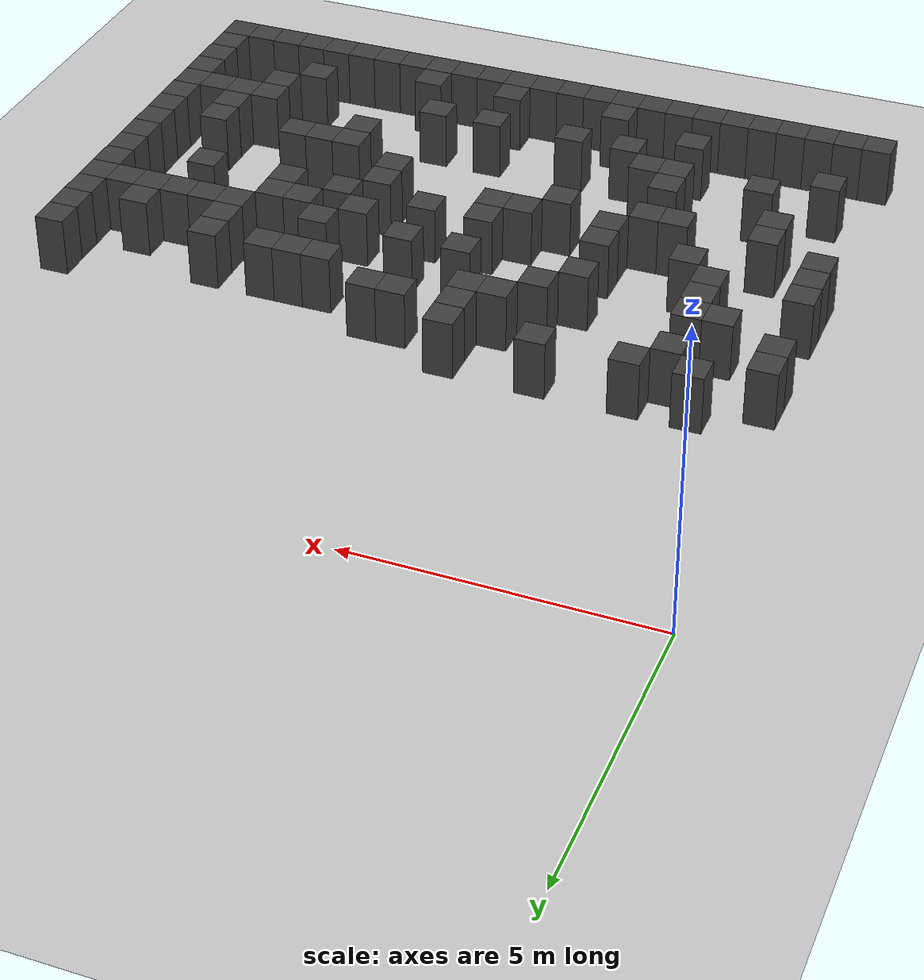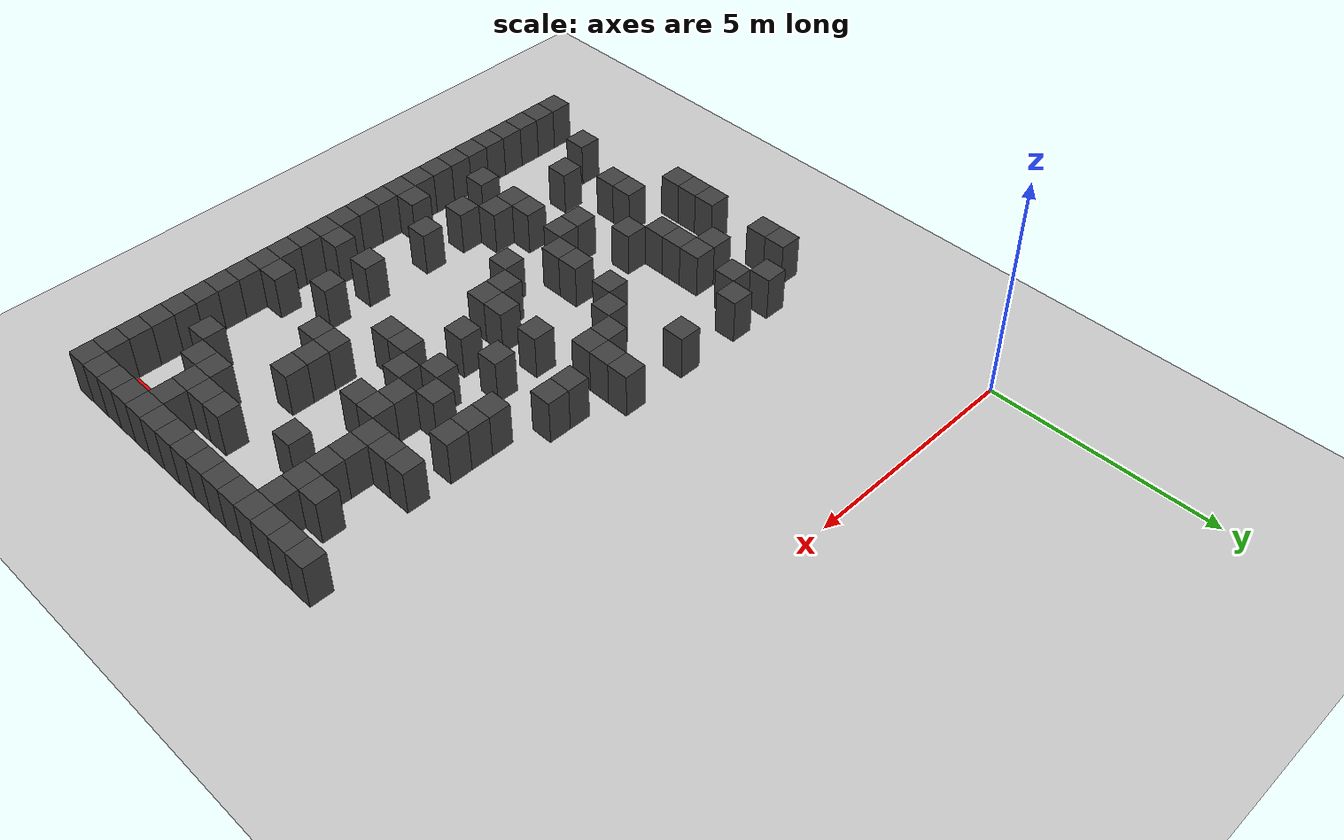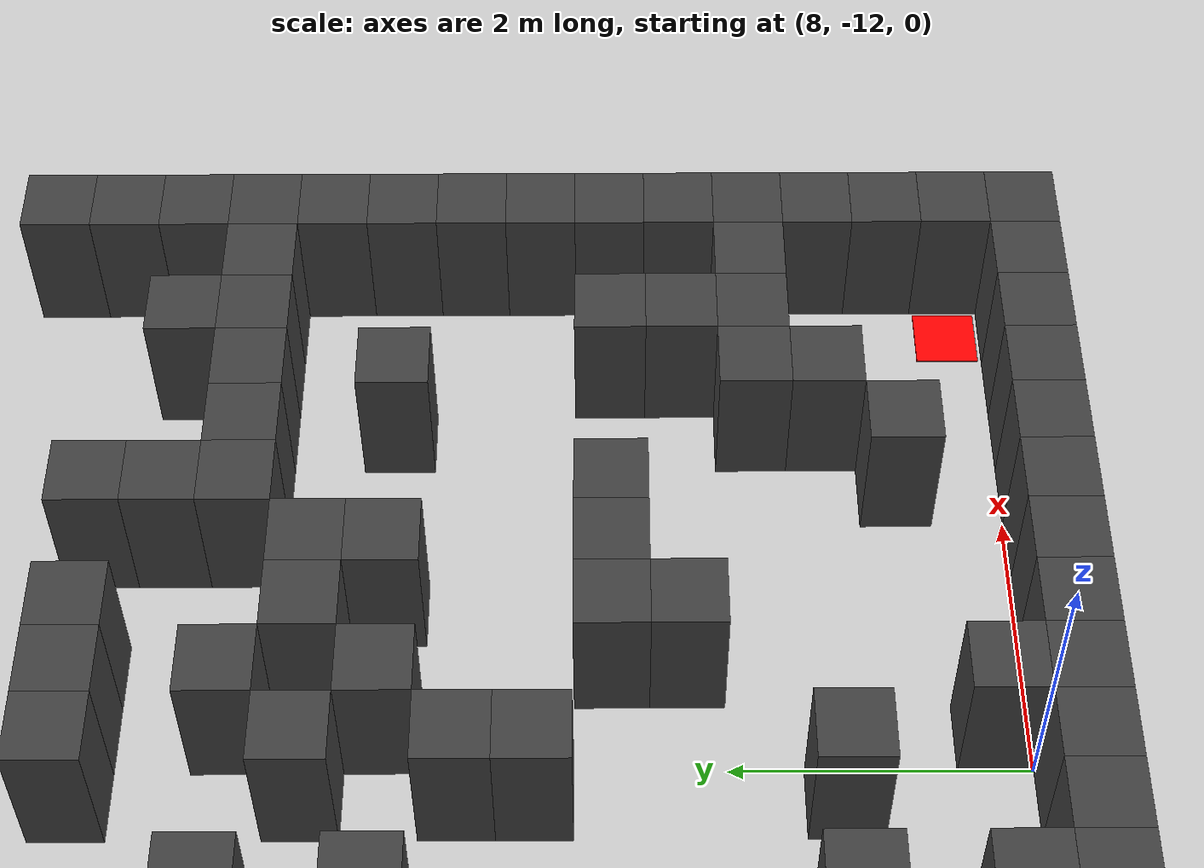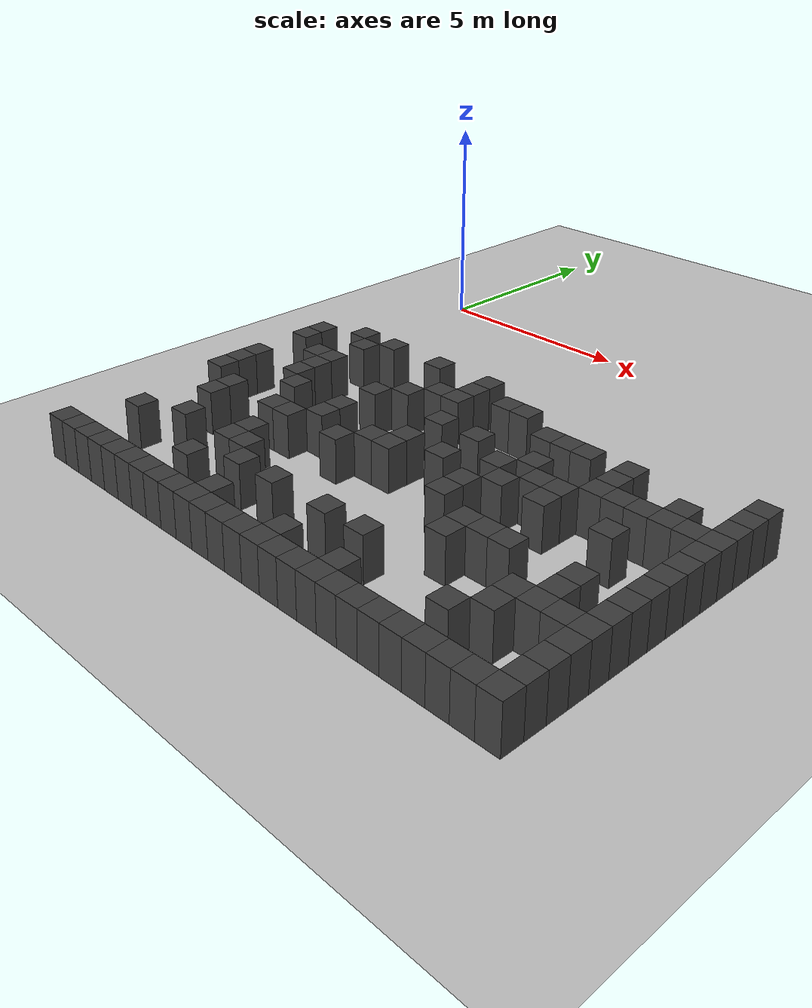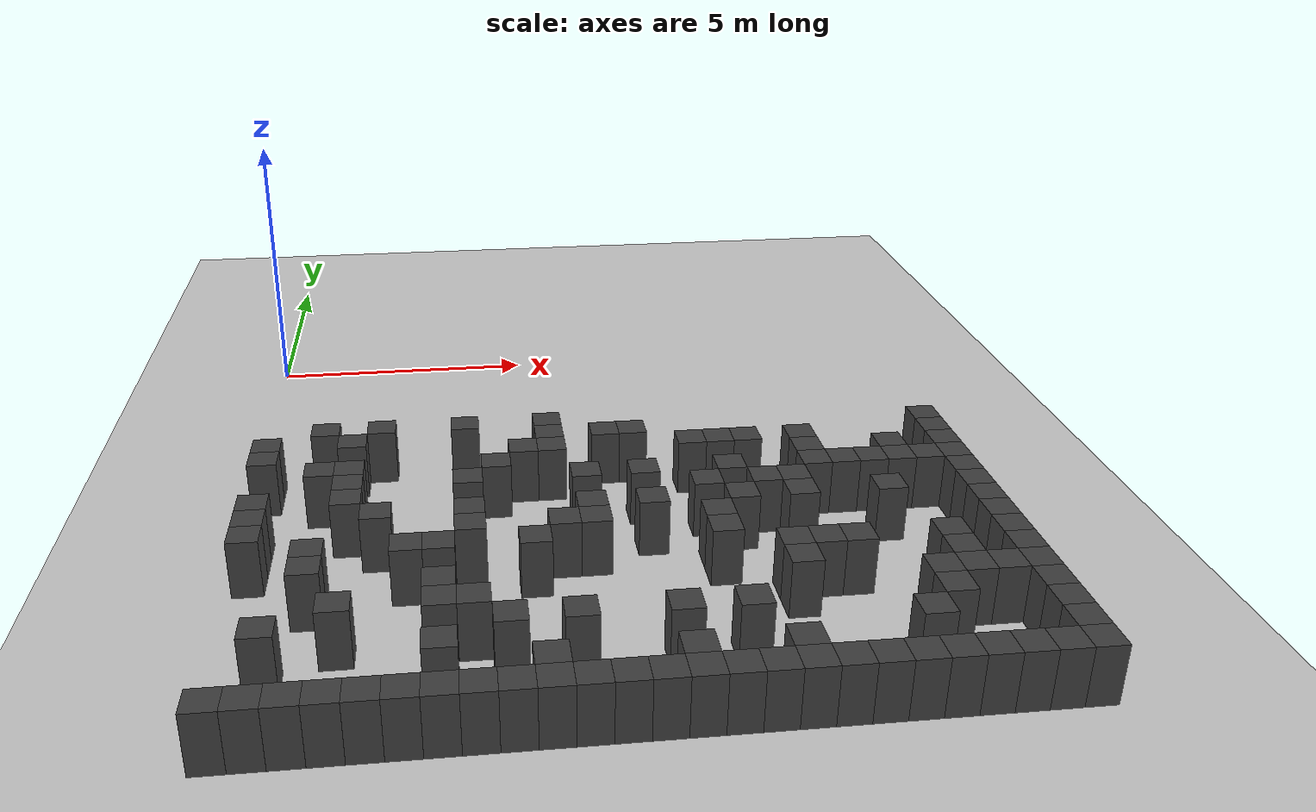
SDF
<sdf version="1.7">
 <world name="map_4682">
  <model name="ground_plane">
   <static>true</static>
   <link name="link">
    <collision name="collision">
     <geometry><plane><normal>0 0 1</normal><size>200 200</size></plane></geometry>
    </collision>
    <visual name="visual">
     <geometry><plane><normal>0 0 1</normal><size>200 200</size></plane></geometry>
     <material><ambient>0.8 0.8 0.8 1</ambient><diffuse>0.8 0.8 0.8 1</diffuse></material>
    </visual>
   </link>
  </model>
  <model name="maze_environment">
   <static>true</static>
   <link name="wall_484">
    <pose>1.250 -4.750 0.500 0 0 0</pose>
    <collision name="col"><geometry><box><size>0.5 0.5 1.0</size></box></geometry></collision>
    <visual name="vis">
     <geometry><box><size>0.5 0.5 1.0</size></box></geometry>
     <material><ambient>0.15 0.15 0.15 1</ambient><diffuse>0.25 0.25 0.25 1</diffuse></material>
    </visual>
   </link>
   <link name="wall_485">
    <pose>2.250 -4.750 0.500 0 0 0</pose>
    <collision name="col"><geometry><box><size>0.5 0.5 1.0</size></box></geometry></collision>
    <visual name="vis">
     <geometry><box><size>0.5 0.5 1.0</size></box></geometry>
     <material><ambient>0.15 0.15 0.15 1</ambient><diffuse>0.25 0.25 0.25 1</diffuse></material>
    </visual>
   </link>
   <link name="wall_486">
    <pose>3.750 -4.750 0.500 0 0 0</pose>
    <collision name="col"><geometry><box><size>0.5 0.5 1.0</size></box></geometry></collision>
    <visual name="vis">
     <geometry><box><size>0.5 0.5 1.0</size></box></geometry>
     <material><ambient>0.15 0.15 0.15 1</ambient><diffuse>0.25 0.25 0.25 1</diffuse></material>
    </visual>
   </link>
   <link name="wall_487">
    <pose>5.250 -4.750 0.500 0 0 0</pose>
    <collision name="col"><geometry><box><size>0.5 0.5 1.0</size></box></geometry></collision>
    <visual name="vis">
     <geometry><box><size>0.5 0.5 1.0</size></box></geometry>
     <material><ambient>0.15 0.15 0.15 1</ambient><diffuse>0.25 0.25 0.25 1</diffuse></material>
    </visual>
   </link>
   <link name="wall_494">
    <pose>0.250 -5.250 0.500 0 0 0</pose>
    <collision name="col"><geometry><box><size>0.5 0.5 1.0</size></box></geometry></collision>
    <visual name="vis">
     <geometry><box><size>0.5 0.5 1.0</size></box></geometry>
     <material><ambient>0.15 0.15 0.15 1</ambient><diffuse>0.25 0.25 0.25 1</diffuse></material>
    </visual>
   </link>
   <link name="wall_495">
    <pose>1.750 -5.250 0.500 0 0 0</pose>
    <collision name="col"><geometry><box><size>0.5 0.5 1.0</size></box></geometry></collision>
    <visual name="vis">
     <geometry><box><size>0.5 0.5 1.0</size></box></geometry>
     <material><ambient>0.15 0.15 0.15 1</ambient><diffuse>0.25 0.25 0.25 1</diffuse></material>
    </visual>
   </link>
   <link name="wall_496">
    <pose>5.250 -5.250 0.500 0 0 0</pose>
    <collision name="col"><geometry><box><size>0.5 0.5 1.0</size></box></geometry></collision>
    <visual name="vis">
     <geometry><box><size>0.5 0.5 1.0</size></box></geometry>
     <material><ambient>0.15 0.15 0.15 1</ambient><diffuse>0.25 0.25 0.25 1</diffuse></material>
    </visual>
   </link>
   <link name="wall_497">
    <pose>6.250 -5.250 0.500 0 0 0</pose>
    <collision name="col"><geometry><box><size>0.5 0.5 1.0</size></box></geometry></collision>
    <visual name="vis">
     <geometry><box><size>0.5 0.5 1.0</size></box></geometry>
     <material><ambient>0.15 0.15 0.15 1</ambient><diffuse>0.25 0.25 0.25 1</diffuse></material>
    </visual>
   </link>
   <link name="wall_498">
    <pose>6.750 -5.250 0.500 0 0 0</pose>
    <collision name="col"><geometry><box><size>0.5 0.5 1.0</size></box></geometry></collision>
    <visual name="vis">
     <geometry><box><size>0.5 0.5 1.0</size></box></geometry>
     <material><ambient>0.15 0.15 0.15 1</ambient><diffuse>0.25 0.25 0.25 1</diffuse></material>
    </visual>
   </link>
   <link name="wall_499">
    <pose>12.250 -5.250 0.500 0 0 0</pose>
    <collision name="col"><geometry><box><size>0.5 0.5 1.0</size></box></geometry></collision>
    <visual name="vis">
     <geometry><box><size>0.5 0.5 1.0</size></box></geometry>
     <material><ambient>0.15 0.15 0.15 1</ambient><diffuse>0.25 0.25 0.25 1</diffuse></material>
    </visual>
   </link>
   <link name="wall_507">
    <pose>0.250 -5.750 0.500 0 0 0</pose>
    <collision name="col"><geometry><box><size>0.5 0.5 1.0</size></box></geometry></collision>
    <visual name="vis">
     <geometry><box><size>0.5 0.5 1.0</size></box></geometry>
     <material><ambient>0.15 0.15 0.15 1</ambient><diffuse>0.25 0.25 0.25 1</diffuse></material>
    </visual>
   </link>
   <link name="wall_508">
    <pose>4.750 -5.750 0.500 0 0 0</pose>
    <collision name="col"><geometry><box><size>0.5 0.5 1.0</size></box></geometry></collision>
    <visual name="vis">
     <geometry><box><size>0.5 0.5 1.0</size></box></geometry>
     <material><ambient>0.15 0.15 0.15 1</ambient><diffuse>0.25 0.25 0.25 1</diffuse></material>
    </visual>
   </link>
   <link name="wall_509">
    <pose>5.250 -5.750 0.500 0 0 0</pose>
    <collision name="col"><geometry><box><size>0.5 0.5 1.0</size></box></geometry></collision>
    <visual name="vis">
     <geometry><box><size>0.5 0.5 1.0</size></box></geometry>
     <material><ambient>0.15 0.15 0.15 1</ambient><diffuse>0.25 0.25 0.25 1</diffuse></material>
    </visual>
   </link>
   <link name="wall_510">
    <pose>7.750 -5.750 0.500 0 0 0</pose>
    <collision name="col"><geometry><box><size>0.5 0.5 1.0</size></box></geometry></collision>
    <visual name="vis">
     <geometry><box><size>0.5 0.5 1.0</size></box></geometry>
     <material><ambient>0.15 0.15 0.15 1</ambient><diffuse>0.25 0.25 0.25 1</diffuse></material>
    </visual>
   </link>
   <link name="wall_511">
    <pose>8.250 -5.750 0.500 0 0 0</pose>
    <collision name="col"><geometry><box><size>0.5 0.5 1.0</size></box></geometry></collision>
    <visual name="vis">
     <geometry><box><size>0.5 0.5 1.0</size></box></geometry>
     <material><ambient>0.15 0.15 0.15 1</ambient><diffuse>0.25 0.25 0.25 1</diffuse></material>
    </visual>
   </link>
   <link name="wall_512">
    <pose>8.750 -5.750 0.500 0 0 0</pose>
    <collision name="col"><geometry><box><size>0.5 0.5 1.0</size></box></geometry></collision>
    <visual name="vis">
     <geometry><box><size>0.5 0.5 1.0</size></box></geometry>
     <material><ambient>0.15 0.15 0.15 1</ambient><diffuse>0.25 0.25 0.25 1</diffuse></material>
    </visual>
   </link>
   <link name="wall_513">
    <pose>9.750 -5.750 0.500 0 0 0</pose>
    <collision name="col"><geometry><box><size>0.5 0.5 1.0</size></box></geometry></collision>
    <visual name="vis">
     <geometry><box><size>0.5 0.5 1.0</size></box></geometry>
     <material><ambient>0.15 0.15 0.15 1</ambient><diffuse>0.25 0.25 0.25 1</diffuse></material>
    </visual>
   </link>
   <link name="wall_514">
    <pose>12.250 -5.750 0.500 0 0 0</pose>
    <collision name="col"><geometry><box><size>0.5 0.5 1.0</size></box></geometry></collision>
    <visual name="vis">
     <geometry><box><size>0.5 0.5 1.0</size></box></geometry>
     <material><ambient>0.15 0.15 0.15 1</ambient><diffuse>0.25 0.25 0.25 1</diffuse></material>
    </visual>
   </link>
   <link name="wall_519">
    <pose>1.250 -6.250 0.500 0 0 0</pose>
    <collision name="col"><geometry><box><size>0.5 0.5 1.0</size></box></geometry></collision>
    <visual name="vis">
     <geometry><box><size>0.5 0.5 1.0</size></box></geometry>
     <material><ambient>0.15 0.15 0.15 1</ambient><diffuse>0.25 0.25 0.25 1</diffuse></material>
    </visual>
   </link>
   <link name="wall_520">
    <pose>1.750 -6.250 0.500 0 0 0</pose>
    <collision name="col"><geometry><box><size>0.5 0.5 1.0</size></box></geometry></collision>
    <visual name="vis">
     <geometry><box><size>0.5 0.5 1.0</size></box></geometry>
     <material><ambient>0.15 0.15 0.15 1</ambient><diffuse>0.25 0.25 0.25 1</diffuse></material>
    </visual>
   </link>
   <link name="wall_521">
    <pose>4.250 -6.250 0.500 0 0 0</pose>
    <collision name="col"><geometry><box><size>0.5 0.5 1.0</size></box></geometry></collision>
    <visual name="vis">
     <geometry><box><size>0.5 0.5 1.0</size></box></geometry>
     <material><ambient>0.15 0.15 0.15 1</ambient><diffuse>0.25 0.25 0.25 1</diffuse></material>
    </visual>
   </link>
   <link name="wall_522">
    <pose>9.750 -6.250 0.500 0 0 0</pose>
    <collision name="col"><geometry><box><size>0.5 0.5 1.0</size></box></geometry></collision>
    <visual name="vis">
     <geometry><box><size>0.5 0.5 1.0</size></box></geometry>
     <material><ambient>0.15 0.15 0.15 1</ambient><diffuse>0.25 0.25 0.25 1</diffuse></material>
    </visual>
   </link>
   <link name="wall_523">
    <pose>11.250 -6.250 0.500 0 0 0</pose>
    <collision name="col"><geometry><box><size>0.5 0.5 1.0</size></box></geometry></collision>
    <visual name="vis">
     <geometry><box><size>0.5 0.5 1.0</size></box></geometry>
     <material><ambient>0.15 0.15 0.15 1</ambient><diffuse>0.25 0.25 0.25 1</diffuse></material>
    </visual>
   </link>
   <link name="wall_524">
    <pose>12.250 -6.250 0.500 0 0 0</pose>
    <collision name="col"><geometry><box><size>0.5 0.5 1.0</size></box></geometry></collision>
    <visual name="vis">
     <geometry><box><size>0.5 0.5 1.0</size></box></geometry>
     <material><ambient>0.15 0.15 0.15 1</ambient><diffuse>0.25 0.25 0.25 1</diffuse></material>
    </visual>
   </link>
   <link name="wall_534">
    <pose>1.750 -6.750 0.500 0 0 0</pose>
    <collision name="col"><geometry><box><size>0.5 0.5 1.0</size></box></geometry></collision>
    <visual name="vis">
     <geometry><box><size>0.5 0.5 1.0</size></box></geometry>
     <material><ambient>0.15 0.15 0.15 1</ambient><diffuse>0.25 0.25 0.25 1</diffuse></material>
    </visual>
   </link>
   <link name="wall_535">
    <pose>3.750 -6.750 0.500 0 0 0</pose>
    <collision name="col"><geometry><box><size>0.5 0.5 1.0</size></box></geometry></collision>
    <visual name="vis">
     <geometry><box><size>0.5 0.5 1.0</size></box></geometry>
     <material><ambient>0.15 0.15 0.15 1</ambient><diffuse>0.25 0.25 0.25 1</diffuse></material>
    </visual>
   </link>
   <link name="wall_536">
    <pose>5.750 -6.750 0.500 0 0 0</pose>
    <collision name="col"><geometry><box><size>0.5 0.5 1.0</size></box></geometry></collision>
    <visual name="vis">
     <geometry><box><size>0.5 0.5 1.0</size></box></geometry>
     <material><ambient>0.15 0.15 0.15 1</ambient><diffuse>0.25 0.25 0.25 1</diffuse></material>
    </visual>
   </link>
   <link name="wall_537">
    <pose>6.750 -6.750 0.500 0 0 0</pose>
    <collision name="col"><geometry><box><size>0.5 0.5 1.0</size></box></geometry></collision>
    <visual name="vis">
     <geometry><box><size>0.5 0.5 1.0</size></box></geometry>
     <material><ambient>0.15 0.15 0.15 1</ambient><diffuse>0.25 0.25 0.25 1</diffuse></material>
    </visual>
   </link>
   <link name="wall_538">
    <pose>8.250 -6.750 0.500 0 0 0</pose>
    <collision name="col"><geometry><box><size>0.5 0.5 1.0</size></box></geometry></collision>
    <visual name="vis">
     <geometry><box><size>0.5 0.5 1.0</size></box></geometry>
     <material><ambient>0.15 0.15 0.15 1</ambient><diffuse>0.25 0.25 0.25 1</diffuse></material>
    </visual>
   </link>
   <link name="wall_539">
    <pose>9.750 -6.750 0.500 0 0 0</pose>
    <collision name="col"><geometry><box><size>0.5 0.5 1.0</size></box></geometry></collision>
    <visual name="vis">
     <geometry><box><size>0.5 0.5 1.0</size></box></geometry>
     <material><ambient>0.15 0.15 0.15 1</ambient><diffuse>0.25 0.25 0.25 1</diffuse></material>
    </visual>
   </link>
   <link name="wall_540">
    <pose>10.250 -6.750 0.500 0 0 0</pose>
    <collision name="col"><geometry><box><size>0.5 0.5 1.0</size></box></geometry></collision>
    <visual name="vis">
     <geometry><box><size>0.5 0.5 1.0</size></box></geometry>
     <material><ambient>0.15 0.15 0.15 1</ambient><diffuse>0.25 0.25 0.25 1</diffuse></material>
    </visual>
   </link>
   <link name="wall_541">
    <pose>10.750 -6.750 0.500 0 0 0</pose>
    <collision name="col"><geometry><box><size>0.5 0.5 1.0</size></box></geometry></collision>
    <visual name="vis">
     <geometry><box><size>0.5 0.5 1.0</size></box></geometry>
     <material><ambient>0.15 0.15 0.15 1</ambient><diffuse>0.25 0.25 0.25 1</diffuse></material>
    </visual>
   </link>
   <link name="wall_542">
    <pose>11.250 -6.750 0.500 0 0 0</pose>
    <collision name="col"><geometry><box><size>0.5 0.5 1.0</size></box></geometry></collision>
    <visual name="vis">
     <geometry><box><size>0.5 0.5 1.0</size></box></geometry>
     <material><ambient>0.15 0.15 0.15 1</ambient><diffuse>0.25 0.25 0.25 1</diffuse></material>
    </visual>
   </link>
   <link name="wall_543">
    <pose>11.750 -6.750 0.500 0 0 0</pose>
    <collision name="col"><geometry><box><size>0.5 0.5 1.0</size></box></geometry></collision>
    <visual name="vis">
     <geometry><box><size>0.5 0.5 1.0</size></box></geometry>
     <material><ambient>0.15 0.15 0.15 1</ambient><diffuse>0.25 0.25 0.25 1</diffuse></material>
    </visual>
   </link>
   <link name="wall_544">
    <pose>12.250 -6.750 0.500 0 0 0</pose>
    <collision name="col"><geometry><box><size>0.5 0.5 1.0</size></box></geometry></collision>
    <visual name="vis">
     <geometry><box><size>0.5 0.5 1.0</size></box></geometry>
     <material><ambient>0.15 0.15 0.15 1</ambient><diffuse>0.25 0.25 0.25 1</diffuse></material>
    </visual>
   </link>
   <link name="wall_551">
    <pose>0.250 -7.250 0.500 0 0 0</pose>
    <collision name="col"><geometry><box><size>0.5 0.5 1.0</size></box></geometry></collision>
    <visual name="vis">
     <geometry><box><size>0.5 0.5 1.0</size></box></geometry>
     <material><ambient>0.15 0.15 0.15 1</ambient><diffuse>0.25 0.25 0.25 1</diffuse></material>
    </visual>
   </link>
   <link name="wall_552">
    <pose>1.750 -7.250 0.500 0 0 0</pose>
    <collision name="col"><geometry><box><size>0.5 0.5 1.0</size></box></geometry></collision>
    <visual name="vis">
     <geometry><box><size>0.5 0.5 1.0</size></box></geometry>
     <material><ambient>0.15 0.15 0.15 1</ambient><diffuse>0.25 0.25 0.25 1</diffuse></material>
    </visual>
   </link>
   <link name="wall_553">
    <pose>7.750 -7.250 0.500 0 0 0</pose>
    <collision name="col"><geometry><box><size>0.5 0.5 1.0</size></box></geometry></collision>
    <visual name="vis">
     <geometry><box><size>0.5 0.5 1.0</size></box></geometry>
     <material><ambient>0.15 0.15 0.15 1</ambient><diffuse>0.25 0.25 0.25 1</diffuse></material>
    </visual>
   </link>
   <link name="wall_554">
    <pose>8.750 -7.250 0.500 0 0 0</pose>
    <collision name="col"><geometry><box><size>0.5 0.5 1.0</size></box></geometry></collision>
    <visual name="vis">
     <geometry><box><size>0.5 0.5 1.0</size></box></geometry>
     <material><ambient>0.15 0.15 0.15 1</ambient><diffuse>0.25 0.25 0.25 1</diffuse></material>
    </visual>
   </link>
   <link name="wall_555">
    <pose>9.250 -7.250 0.500 0 0 0</pose>
    <collision name="col"><geometry><box><size>0.5 0.5 1.0</size></box></geometry></collision>
    <visual name="vis">
     <geometry><box><size>0.5 0.5 1.0</size></box></geometry>
     <material><ambient>0.15 0.15 0.15 1</ambient><diffuse>0.25 0.25 0.25 1</diffuse></material>
    </visual>
   </link>
   <link name="wall_556">
    <pose>12.250 -7.250 0.500 0 0 0</pose>
    <collision name="col"><geometry><box><size>0.5 0.5 1.0</size></box></geometry></collision>
    <visual name="vis">
     <geometry><box><size>0.5 0.5 1.0</size></box></geometry>
     <material><ambient>0.15 0.15 0.15 1</ambient><diffuse>0.25 0.25 0.25 1</diffuse></material>
    </visual>
   </link>
   <link name="wall_561">
    <pose>0.250 -7.750 0.500 0 0 0</pose>
    <collision name="col"><geometry><box><size>0.5 0.5 1.0</size></box></geometry></collision>
    <visual name="vis">
     <geometry><box><size>0.5 0.5 1.0</size></box></geometry>
     <material><ambient>0.15 0.15 0.15 1</ambient><diffuse>0.25 0.25 0.25 1</diffuse></material>
    </visual>
   </link>
   <link name="wall_562">
    <pose>2.250 -7.750 0.500 0 0 0</pose>
    <collision name="col"><geometry><box><size>0.5 0.5 1.0</size></box></geometry></collision>
    <visual name="vis">
     <geometry><box><size>0.5 0.5 1.0</size></box></geometry>
     <material><ambient>0.15 0.15 0.15 1</ambient><diffuse>0.25 0.25 0.25 1</diffuse></material>
    </visual>
   </link>
   <link name="wall_563">
    <pose>3.750 -7.750 0.500 0 0 0</pose>
    <collision name="col"><geometry><box><size>0.5 0.5 1.0</size></box></geometry></collision>
    <visual name="vis">
     <geometry><box><size>0.5 0.5 1.0</size></box></geometry>
     <material><ambient>0.15 0.15 0.15 1</ambient><diffuse>0.25 0.25 0.25 1</diffuse></material>
    </visual>
   </link>
   <link name="wall_564">
    <pose>5.750 -7.750 0.500 0 0 0</pose>
    <collision name="col"><geometry><box><size>0.5 0.5 1.0</size></box></geometry></collision>
    <visual name="vis">
     <geometry><box><size>0.5 0.5 1.0</size></box></geometry>
     <material><ambient>0.15 0.15 0.15 1</ambient><diffuse>0.25 0.25 0.25 1</diffuse></material>
    </visual>
   </link>
   <link name="wall_565">
    <pose>6.750 -7.750 0.500 0 0 0</pose>
    <collision name="col"><geometry><box><size>0.5 0.5 1.0</size></box></geometry></collision>
    <visual name="vis">
     <geometry><box><size>0.5 0.5 1.0</size></box></geometry>
     <material><ambient>0.15 0.15 0.15 1</ambient><diffuse>0.25 0.25 0.25 1</diffuse></material>
    </visual>
   </link>
   <link name="wall_566">
    <pose>8.250 -7.750 0.500 0 0 0</pose>
    <collision name="col"><geometry><box><size>0.5 0.5 1.0</size></box></geometry></collision>
    <visual name="vis">
     <geometry><box><size>0.5 0.5 1.0</size></box></geometry>
     <material><ambient>0.15 0.15 0.15 1</ambient><diffuse>0.25 0.25 0.25 1</diffuse></material>
    </visual>
   </link>
   <link name="wall_567">
    <pose>9.250 -7.750 0.500 0 0 0</pose>
    <collision name="col"><geometry><box><size>0.5 0.5 1.0</size></box></geometry></collision>
    <visual name="vis">
     <geometry><box><size>0.5 0.5 1.0</size></box></geometry>
     <material><ambient>0.15 0.15 0.15 1</ambient><diffuse>0.25 0.25 0.25 1</diffuse></material>
    </visual>
   </link>
   <link name="wall_568">
    <pose>10.750 -7.750 0.500 0 0 0</pose>
    <collision name="col"><geometry><box><size>0.5 0.5 1.0</size></box></geometry></collision>
    <visual name="vis">
     <geometry><box><size>0.5 0.5 1.0</size></box></geometry>
     <material><ambient>0.15 0.15 0.15 1</ambient><diffuse>0.25 0.25 0.25 1</diffuse></material>
    </visual>
   </link>
   <link name="wall_569">
    <pose>12.250 -7.750 0.500 0 0 0</pose>
    <collision name="col"><geometry><box><size>0.5 0.5 1.0</size></box></geometry></collision>
    <visual name="vis">
     <geometry><box><size>0.5 0.5 1.0</size></box></geometry>
     <material><ambient>0.15 0.15 0.15 1</ambient><diffuse>0.25 0.25 0.25 1</diffuse></material>
    </visual>
   </link>
   <link name="wall_575">
    <pose>0.250 -8.250 0.500 0 0 0</pose>
    <collision name="col"><geometry><box><size>0.5 0.5 1.0</size></box></geometry></collision>
    <visual name="vis">
     <geometry><box><size>0.5 0.5 1.0</size></box></geometry>
     <material><ambient>0.15 0.15 0.15 1</ambient><diffuse>0.25 0.25 0.25 1</diffuse></material>
    </visual>
   </link>
   <link name="wall_576">
    <pose>3.750 -8.250 0.500 0 0 0</pose>
    <collision name="col"><geometry><box><size>0.5 0.5 1.0</size></box></geometry></collision>
    <visual name="vis">
     <geometry><box><size>0.5 0.5 1.0</size></box></geometry>
     <material><ambient>0.15 0.15 0.15 1</ambient><diffuse>0.25 0.25 0.25 1</diffuse></material>
    </visual>
   </link>
   <link name="wall_577">
    <pose>5.250 -8.250 0.500 0 0 0</pose>
    <collision name="col"><geometry><box><size>0.5 0.5 1.0</size></box></geometry></collision>
    <visual name="vis">
     <geometry><box><size>0.5 0.5 1.0</size></box></geometry>
     <material><ambient>0.15 0.15 0.15 1</ambient><diffuse>0.25 0.25 0.25 1</diffuse></material>
    </visual>
   </link>
   <link name="wall_578">
    <pose>5.750 -8.250 0.500 0 0 0</pose>
    <collision name="col"><geometry><box><size>0.5 0.5 1.0</size></box></geometry></collision>
    <visual name="vis">
     <geometry><box><size>0.5 0.5 1.0</size></box></geometry>
     <material><ambient>0.15 0.15 0.15 1</ambient><diffuse>0.25 0.25 0.25 1</diffuse></material>
    </visual>
   </link>
   <link name="wall_579">
    <pose>7.750 -8.250 0.500 0 0 0</pose>
    <collision name="col"><geometry><box><size>0.5 0.5 1.0</size></box></geometry></collision>
    <visual name="vis">
     <geometry><box><size>0.5 0.5 1.0</size></box></geometry>
     <material><ambient>0.15 0.15 0.15 1</ambient><diffuse>0.25 0.25 0.25 1</diffuse></material>
    </visual>
   </link>
   <link name="wall_580">
    <pose>12.250 -8.250 0.500 0 0 0</pose>
    <collision name="col"><geometry><box><size>0.5 0.5 1.0</size></box></geometry></collision>
    <visual name="vis">
     <geometry><box><size>0.5 0.5 1.0</size></box></geometry>
     <material><ambient>0.15 0.15 0.15 1</ambient><diffuse>0.25 0.25 0.25 1</diffuse></material>
    </visual>
   </link>
   <link name="wall_587">
    <pose>1.250 -8.750 0.500 0 0 0</pose>
    <collision name="col"><geometry><box><size>0.5 0.5 1.0</size></box></geometry></collision>
    <visual name="vis">
     <geometry><box><size>0.5 0.5 1.0</size></box></geometry>
     <material><ambient>0.15 0.15 0.15 1</ambient><diffuse>0.25 0.25 0.25 1</diffuse></material>
    </visual>
   </link>
   <link name="wall_588">
    <pose>2.750 -8.750 0.500 0 0 0</pose>
    <collision name="col"><geometry><box><size>0.5 0.5 1.0</size></box></geometry></collision>
    <visual name="vis">
     <geometry><box><size>0.5 0.5 1.0</size></box></geometry>
     <material><ambient>0.15 0.15 0.15 1</ambient><diffuse>0.25 0.25 0.25 1</diffuse></material>
    </visual>
   </link>
   <link name="wall_589">
    <pose>3.250 -8.750 0.500 0 0 0</pose>
    <collision name="col"><geometry><box><size>0.5 0.5 1.0</size></box></geometry></collision>
    <visual name="vis">
     <geometry><box><size>0.5 0.5 1.0</size></box></geometry>
     <material><ambient>0.15 0.15 0.15 1</ambient><diffuse>0.25 0.25 0.25 1</diffuse></material>
    </visual>
   </link>
   <link name="wall_590">
    <pose>4.750 -8.750 0.500 0 0 0</pose>
    <collision name="col"><geometry><box><size>0.5 0.5 1.0</size></box></geometry></collision>
    <visual name="vis">
     <geometry><box><size>0.5 0.5 1.0</size></box></geometry>
     <material><ambient>0.15 0.15 0.15 1</ambient><diffuse>0.25 0.25 0.25 1</diffuse></material>
    </visual>
   </link>
   <link name="wall_591">
    <pose>7.750 -8.750 0.500 0 0 0</pose>
    <collision name="col"><geometry><box><size>0.5 0.5 1.0</size></box></geometry></collision>
    <visual name="vis">
     <geometry><box><size>0.5 0.5 1.0</size></box></geometry>
     <material><ambient>0.15 0.15 0.15 1</ambient><diffuse>0.25 0.25 0.25 1</diffuse></material>
    </visual>
   </link>
   <link name="wall_592">
    <pose>12.250 -8.750 0.500 0 0 0</pose>
    <collision name="col"><geometry><box><size>0.5 0.5 1.0</size></box></geometry></collision>
    <visual name="vis">
     <geometry><box><size>0.5 0.5 1.0</size></box></geometry>
     <material><ambient>0.15 0.15 0.15 1</ambient><diffuse>0.25 0.25 0.25 1</diffuse></material>
    </visual>
   </link>
   <link name="wall_600">
    <pose>1.250 -9.250 0.500 0 0 0</pose>
    <collision name="col"><geometry><box><size>0.5 0.5 1.0</size></box></geometry></collision>
    <visual name="vis">
     <geometry><box><size>0.5 0.5 1.0</size></box></geometry>
     <material><ambient>0.15 0.15 0.15 1</ambient><diffuse>0.25 0.25 0.25 1</diffuse></material>
    </visual>
   </link>
   <link name="wall_601">
    <pose>8.750 -9.250 0.500 0 0 0</pose>
    <collision name="col"><geometry><box><size>0.5 0.5 1.0</size></box></geometry></collision>
    <visual name="vis">
     <geometry><box><size>0.5 0.5 1.0</size></box></geometry>
     <material><ambient>0.15 0.15 0.15 1</ambient><diffuse>0.25 0.25 0.25 1</diffuse></material>
    </visual>
   </link>
   <link name="wall_602">
    <pose>9.250 -9.250 0.500 0 0 0</pose>
    <collision name="col"><geometry><box><size>0.5 0.5 1.0</size></box></geometry></collision>
    <visual name="vis">
     <geometry><box><size>0.5 0.5 1.0</size></box></geometry>
     <material><ambient>0.15 0.15 0.15 1</ambient><diffuse>0.25 0.25 0.25 1</diffuse></material>
    </visual>
   </link>
   <link name="wall_603">
    <pose>9.750 -9.250 0.500 0 0 0</pose>
    <collision name="col"><geometry><box><size>0.5 0.5 1.0</size></box></geometry></collision>
    <visual name="vis">
     <geometry><box><size>0.5 0.5 1.0</size></box></geometry>
     <material><ambient>0.15 0.15 0.15 1</ambient><diffuse>0.25 0.25 0.25 1</diffuse></material>
    </visual>
   </link>
   <link name="wall_604">
    <pose>11.250 -9.250 0.500 0 0 0</pose>
    <collision name="col"><geometry><box><size>0.5 0.5 1.0</size></box></geometry></collision>
    <visual name="vis">
     <geometry><box><size>0.5 0.5 1.0</size></box></geometry>
     <material><ambient>0.15 0.15 0.15 1</ambient><diffuse>0.25 0.25 0.25 1</diffuse></material>
    </visual>
   </link>
   <link name="wall_605">
    <pose>12.250 -9.250 0.500 0 0 0</pose>
    <collision name="col"><geometry><box><size>0.5 0.5 1.0</size></box></geometry></collision>
    <visual name="vis">
     <geometry><box><size>0.5 0.5 1.0</size></box></geometry>
     <material><ambient>0.15 0.15 0.15 1</ambient><diffuse>0.25 0.25 0.25 1</diffuse></material>
    </visual>
   </link>
   <link name="wall_612">
    <pose>3.250 -9.750 0.500 0 0 0</pose>
    <collision name="col"><geometry><box><size>0.5 0.5 1.0</size></box></geometry></collision>
    <visual name="vis">
     <geometry><box><size>0.5 0.5 1.0</size></box></geometry>
     <material><ambient>0.15 0.15 0.15 1</ambient><diffuse>0.25 0.25 0.25 1</diffuse></material>
    </visual>
   </link>
   <link name="wall_613">
    <pose>8.750 -9.750 0.500 0 0 0</pose>
    <collision name="col"><geometry><box><size>0.5 0.5 1.0</size></box></geometry></collision>
    <visual name="vis">
     <geometry><box><size>0.5 0.5 1.0</size></box></geometry>
     <material><ambient>0.15 0.15 0.15 1</ambient><diffuse>0.25 0.25 0.25 1</diffuse></material>
    </visual>
   </link>
   <link name="wall_614">
    <pose>11.250 -9.750 0.500 0 0 0</pose>
    <collision name="col"><geometry><box><size>0.5 0.5 1.0</size></box></geometry></collision>
    <visual name="vis">
     <geometry><box><size>0.5 0.5 1.0</size></box></geometry>
     <material><ambient>0.15 0.15 0.15 1</ambient><diffuse>0.25 0.25 0.25 1</diffuse></material>
    </visual>
   </link>
   <link name="wall_615">
    <pose>12.250 -9.750 0.500 0 0 0</pose>
    <collision name="col"><geometry><box><size>0.5 0.5 1.0</size></box></geometry></collision>
    <visual name="vis">
     <geometry><box><size>0.5 0.5 1.0</size></box></geometry>
     <material><ambient>0.15 0.15 0.15 1</ambient><diffuse>0.25 0.25 0.25 1</diffuse></material>
    </visual>
   </link>
   <link name="wall_620">
    <pose>1.750 -10.250 0.500 0 0 0</pose>
    <collision name="col"><geometry><box><size>0.5 0.5 1.0</size></box></geometry></collision>
    <visual name="vis">
     <geometry><box><size>0.5 0.5 1.0</size></box></geometry>
     <material><ambient>0.15 0.15 0.15 1</ambient><diffuse>0.25 0.25 0.25 1</diffuse></material>
    </visual>
   </link>
   <link name="wall_621">
    <pose>3.250 -10.250 0.500 0 0 0</pose>
    <collision name="col"><geometry><box><size>0.5 0.5 1.0</size></box></geometry></collision>
    <visual name="vis">
     <geometry><box><size>0.5 0.5 1.0</size></box></geometry>
     <material><ambient>0.15 0.15 0.15 1</ambient><diffuse>0.25 0.25 0.25 1</diffuse></material>
    </visual>
   </link>
   <link name="wall_622">
    <pose>3.750 -10.250 0.500 0 0 0</pose>
    <collision name="col"><geometry><box><size>0.5 0.5 1.0</size></box></geometry></collision>
    <visual name="vis">
     <geometry><box><size>0.5 0.5 1.0</size></box></geometry>
     <material><ambient>0.15 0.15 0.15 1</ambient><diffuse>0.25 0.25 0.25 1</diffuse></material>
    </visual>
   </link>
   <link name="wall_623">
    <pose>10.750 -10.250 0.500 0 0 0</pose>
    <collision name="col"><geometry><box><size>0.5 0.5 1.0</size></box></geometry></collision>
    <visual name="vis">
     <geometry><box><size>0.5 0.5 1.0</size></box></geometry>
     <material><ambient>0.15 0.15 0.15 1</ambient><diffuse>0.25 0.25 0.25 1</diffuse></material>
    </visual>
   </link>
   <link name="wall_624">
    <pose>11.250 -10.250 0.500 0 0 0</pose>
    <collision name="col"><geometry><box><size>0.5 0.5 1.0</size></box></geometry></collision>
    <visual name="vis">
     <geometry><box><size>0.5 0.5 1.0</size></box></geometry>
     <material><ambient>0.15 0.15 0.15 1</ambient><diffuse>0.25 0.25 0.25 1</diffuse></material>
    </visual>
   </link>
   <link name="wall_625">
    <pose>11.750 -10.250 0.500 0 0 0</pose>
    <collision name="col"><geometry><box><size>0.5 0.5 1.0</size></box></geometry></collision>
    <visual name="vis">
     <geometry><box><size>0.5 0.5 1.0</size></box></geometry>
     <material><ambient>0.15 0.15 0.15 1</ambient><diffuse>0.25 0.25 0.25 1</diffuse></material>
    </visual>
   </link>
   <link name="wall_626">
    <pose>12.250 -10.250 0.500 0 0 0</pose>
    <collision name="col"><geometry><box><size>0.5 0.5 1.0</size></box></geometry></collision>
    <visual name="vis">
     <geometry><box><size>0.5 0.5 1.0</size></box></geometry>
     <material><ambient>0.15 0.15 0.15 1</ambient><diffuse>0.25 0.25 0.25 1</diffuse></material>
    </visual>
   </link>
   <link name="wall_635">
    <pose>0.750 -10.750 0.500 0 0 0</pose>
    <collision name="col"><geometry><box><size>0.5 0.5 1.0</size></box></geometry></collision>
    <visual name="vis">
     <geometry><box><size>0.5 0.5 1.0</size></box></geometry>
     <material><ambient>0.15 0.15 0.15 1</ambient><diffuse>0.25 0.25 0.25 1</diffuse></material>
    </visual>
   </link>
   <link name="wall_636">
    <pose>4.250 -10.750 0.500 0 0 0</pose>
    <collision name="col"><geometry><box><size>0.5 0.5 1.0</size></box></geometry></collision>
    <visual name="vis">
     <geometry><box><size>0.5 0.5 1.0</size></box></geometry>
     <material><ambient>0.15 0.15 0.15 1</ambient><diffuse>0.25 0.25 0.25 1</diffuse></material>
    </visual>
   </link>
   <link name="wall_637">
    <pose>5.250 -10.750 0.500 0 0 0</pose>
    <collision name="col"><geometry><box><size>0.5 0.5 1.0</size></box></geometry></collision>
    <visual name="vis">
     <geometry><box><size>0.5 0.5 1.0</size></box></geometry>
     <material><ambient>0.15 0.15 0.15 1</ambient><diffuse>0.25 0.25 0.25 1</diffuse></material>
    </visual>
   </link>
   <link name="wall_638">
    <pose>6.750 -10.750 0.500 0 0 0</pose>
    <collision name="col"><geometry><box><size>0.5 0.5 1.0</size></box></geometry></collision>
    <visual name="vis">
     <geometry><box><size>0.5 0.5 1.0</size></box></geometry>
     <material><ambient>0.15 0.15 0.15 1</ambient><diffuse>0.25 0.25 0.25 1</diffuse></material>
    </visual>
   </link>
   <link name="wall_639">
    <pose>7.750 -10.750 0.500 0 0 0</pose>
    <collision name="col"><geometry><box><size>0.5 0.5 1.0</size></box></geometry></collision>
    <visual name="vis">
     <geometry><box><size>0.5 0.5 1.0</size></box></geometry>
     <material><ambient>0.15 0.15 0.15 1</ambient><diffuse>0.25 0.25 0.25 1</diffuse></material>
    </visual>
   </link>
   <link name="wall_640">
    <pose>10.750 -10.750 0.500 0 0 0</pose>
    <collision name="col"><geometry><box><size>0.5 0.5 1.0</size></box></geometry></collision>
    <visual name="vis">
     <geometry><box><size>0.5 0.5 1.0</size></box></geometry>
     <material><ambient>0.15 0.15 0.15 1</ambient><diffuse>0.25 0.25 0.25 1</diffuse></material>
    </visual>
   </link>
   <link name="wall_641">
    <pose>12.250 -10.750 0.500 0 0 0</pose>
    <collision name="col"><geometry><box><size>0.5 0.5 1.0</size></box></geometry></collision>
    <visual name="vis">
     <geometry><box><size>0.5 0.5 1.0</size></box></geometry>
     <material><ambient>0.15 0.15 0.15 1</ambient><diffuse>0.25 0.25 0.25 1</diffuse></material>
    </visual>
   </link>
   <link name="wall_646">
    <pose>3.250 -11.250 0.500 0 0 0</pose>
    <collision name="col"><geometry><box><size>0.5 0.5 1.0</size></box></geometry></collision>
    <visual name="vis">
     <geometry><box><size>0.5 0.5 1.0</size></box></geometry>
     <material><ambient>0.15 0.15 0.15 1</ambient><diffuse>0.25 0.25 0.25 1</diffuse></material>
    </visual>
   </link>
   <link name="wall_647">
    <pose>10.250 -11.250 0.500 0 0 0</pose>
    <collision name="col"><geometry><box><size>0.5 0.5 1.0</size></box></geometry></collision>
    <visual name="vis">
     <geometry><box><size>0.5 0.5 1.0</size></box></geometry>
     <material><ambient>0.15 0.15 0.15 1</ambient><diffuse>0.25 0.25 0.25 1</diffuse></material>
    </visual>
   </link>
   <link name="wall_648">
    <pose>12.250 -11.250 0.500 0 0 0</pose>
    <collision name="col"><geometry><box><size>0.5 0.5 1.0</size></box></geometry></collision>
    <visual name="vis">
     <geometry><box><size>0.5 0.5 1.0</size></box></geometry>
     <material><ambient>0.15 0.15 0.15 1</ambient><diffuse>0.25 0.25 0.25 1</diffuse></material>
    </visual>
   </link>
   <link name="wall_657">
    <pose>4.750 -11.750 0.500 0 0 0</pose>
    <collision name="col"><geometry><box><size>0.5 0.5 1.0</size></box></geometry></collision>
    <visual name="vis">
     <geometry><box><size>0.5 0.5 1.0</size></box></geometry>
     <material><ambient>0.15 0.15 0.15 1</ambient><diffuse>0.25 0.25 0.25 1</diffuse></material>
    </visual>
   </link>
   <link name="wall_658">
    <pose>6.750 -11.750 0.500 0 0 0</pose>
    <collision name="col"><geometry><box><size>0.5 0.5 1.0</size></box></geometry></collision>
    <visual name="vis">
     <geometry><box><size>0.5 0.5 1.0</size></box></geometry>
     <material><ambient>0.15 0.15 0.15 1</ambient><diffuse>0.25 0.25 0.25 1</diffuse></material>
    </visual>
   </link>
   <link name="wall_659">
    <pose>8.250 -11.750 0.500 0 0 0</pose>
    <collision name="col"><geometry><box><size>0.5 0.5 1.0</size></box></geometry></collision>
    <visual name="vis">
     <geometry><box><size>0.5 0.5 1.0</size></box></geometry>
     <material><ambient>0.15 0.15 0.15 1</ambient><diffuse>0.25 0.25 0.25 1</diffuse></material>
    </visual>
   </link>
   <link name="wall_660">
    <pose>12.250 -11.750 0.500 0 0 0</pose>
    <collision name="col"><geometry><box><size>0.5 0.5 1.0</size></box></geometry></collision>
    <visual name="vis">
     <geometry><box><size>0.5 0.5 1.0</size></box></geometry>
     <material><ambient>0.15 0.15 0.15 1</ambient><diffuse>0.25 0.25 0.25 1</diffuse></material>
    </visual>
   </link>
   <link name="wall_686">
    <pose>0.250 -12.250 0.500 0 0 0</pose>
    <collision name="col"><geometry><box><size>0.5 0.5 1.0</size></box></geometry></collision>
    <visual name="vis">
     <geometry><box><size>0.5 0.5 1.0</size></box></geometry>
     <material><ambient>0.15 0.15 0.15 1</ambient><diffuse>0.25 0.25 0.25 1</diffuse></material>
    </visual>
   </link>
   <link name="wall_687">
    <pose>0.750 -12.250 0.500 0 0 0</pose>
    <collision name="col"><geometry><box><size>0.5 0.5 1.0</size></box></geometry></collision>
    <visual name="vis">
     <geometry><box><size>0.5 0.5 1.0</size></box></geometry>
     <material><ambient>0.15 0.15 0.15 1</ambient><diffuse>0.25 0.25 0.25 1</diffuse></material>
    </visual>
   </link>
   <link name="wall_688">
    <pose>1.250 -12.250 0.500 0 0 0</pose>
    <collision name="col"><geometry><box><size>0.5 0.5 1.0</size></box></geometry></collision>
    <visual name="vis">
     <geometry><box><size>0.5 0.5 1.0</size></box></geometry>
     <material><ambient>0.15 0.15 0.15 1</ambient><diffuse>0.25 0.25 0.25 1</diffuse></material>
    </visual>
   </link>
   <link name="wall_689">
    <pose>1.750 -12.250 0.500 0 0 0</pose>
    <collision name="col"><geometry><box><size>0.5 0.5 1.0</size></box></geometry></collision>
    <visual name="vis">
     <geometry><box><size>0.5 0.5 1.0</size></box></geometry>
     <material><ambient>0.15 0.15 0.15 1</ambient><diffuse>0.25 0.25 0.25 1</diffuse></material>
    </visual>
   </link>
   <link name="wall_690">
    <pose>2.250 -12.250 0.500 0 0 0</pose>
    <collision name="col"><geometry><box><size>0.5 0.5 1.0</size></box></geometry></collision>
    <visual name="vis">
     <geometry><box><size>0.5 0.5 1.0</size></box></geometry>
     <material><ambient>0.15 0.15 0.15 1</ambient><diffuse>0.25 0.25 0.25 1</diffuse></material>
    </visual>
   </link>
   <link name="wall_691">
    <pose>2.750 -12.250 0.500 0 0 0</pose>
    <collision name="col"><geometry><box><size>0.5 0.5 1.0</size></box></geometry></collision>
    <visual name="vis">
     <geometry><box><size>0.5 0.5 1.0</size></box></geometry>
     <material><ambient>0.15 0.15 0.15 1</ambient><diffuse>0.25 0.25 0.25 1</diffuse></material>
    </visual>
   </link>
   <link name="wall_692">
    <pose>3.250 -12.250 0.500 0 0 0</pose>
    <collision name="col"><geometry><box><size>0.5 0.5 1.0</size></box></geometry></collision>
    <visual name="vis">
     <geometry><box><size>0.5 0.5 1.0</size></box></geometry>
     <material><ambient>0.15 0.15 0.15 1</ambient><diffuse>0.25 0.25 0.25 1</diffuse></material>
    </visual>
   </link>
   <link name="wall_693">
    <pose>3.750 -12.250 0.500 0 0 0</pose>
    <collision name="col"><geometry><box><size>0.5 0.5 1.0</size></box></geometry></collision>
    <visual name="vis">
     <geometry><box><size>0.5 0.5 1.0</size></box></geometry>
     <material><ambient>0.15 0.15 0.15 1</ambient><diffuse>0.25 0.25 0.25 1</diffuse></material>
    </visual>
   </link>
   <link name="wall_694">
    <pose>4.250 -12.250 0.500 0 0 0</pose>
    <collision name="col"><geometry><box><size>0.5 0.5 1.0</size></box></geometry></collision>
    <visual name="vis">
     <geometry><box><size>0.5 0.5 1.0</size></box></geometry>
     <material><ambient>0.15 0.15 0.15 1</ambient><diffuse>0.25 0.25 0.25 1</diffuse></material>
    </visual>
   </link>
   <link name="wall_695">
    <pose>4.750 -12.250 0.500 0 0 0</pose>
    <collision name="col"><geometry><box><size>0.5 0.5 1.0</size></box></geometry></collision>
    <visual name="vis">
     <geometry><box><size>0.5 0.5 1.0</size></box></geometry>
     <material><ambient>0.15 0.15 0.15 1</ambient><diffuse>0.25 0.25 0.25 1</diffuse></material>
    </visual>
   </link>
   <link name="wall_696">
    <pose>5.250 -12.250 0.500 0 0 0</pose>
    <collision name="col"><geometry><box><size>0.5 0.5 1.0</size></box></geometry></collision>
    <visual name="vis">
     <geometry><box><size>0.5 0.5 1.0</size></box></geometry>
     <material><ambient>0.15 0.15 0.15 1</ambient><diffuse>0.25 0.25 0.25 1</diffuse></material>
    </visual>
   </link>
   <link name="wall_697">
    <pose>5.750 -12.250 0.500 0 0 0</pose>
    <collision name="col"><geometry><box><size>0.5 0.5 1.0</size></box></geometry></collision>
    <visual name="vis">
     <geometry><box><size>0.5 0.5 1.0</size></box></geometry>
     <material><ambient>0.15 0.15 0.15 1</ambient><diffuse>0.25 0.25 0.25 1</diffuse></material>
    </visual>
   </link>
   <link name="wall_698">
    <pose>6.250 -12.250 0.500 0 0 0</pose>
    <collision name="col"><geometry><box><size>0.5 0.5 1.0</size></box></geometry></collision>
    <visual name="vis">
     <geometry><box><size>0.5 0.5 1.0</size></box></geometry>
     <material><ambient>0.15 0.15 0.15 1</ambient><diffuse>0.25 0.25 0.25 1</diffuse></material>
    </visual>
   </link>
   <link name="wall_699">
    <pose>6.750 -12.250 0.500 0 0 0</pose>
    <collision name="col"><geometry><box><size>0.5 0.5 1.0</size></box></geometry></collision>
    <visual name="vis">
     <geometry><box><size>0.5 0.5 1.0</size></box></geometry>
     <material><ambient>0.15 0.15 0.15 1</ambient><diffuse>0.25 0.25 0.25 1</diffuse></material>
    </visual>
   </link>
   <link name="wall_700">
    <pose>7.250 -12.250 0.500 0 0 0</pose>
    <collision name="col"><geometry><box><size>0.5 0.5 1.0</size></box></geometry></collision>
    <visual name="vis">
     <geometry><box><size>0.5 0.5 1.0</size></box></geometry>
     <material><ambient>0.15 0.15 0.15 1</ambient><diffuse>0.25 0.25 0.25 1</diffuse></material>
    </visual>
   </link>
   <link name="wall_701">
    <pose>7.750 -12.250 0.500 0 0 0</pose>
    <collision name="col"><geometry><box><size>0.5 0.5 1.0</size></box></geometry></collision>
    <visual name="vis">
     <geometry><box><size>0.5 0.5 1.0</size></box></geometry>
     <material><ambient>0.15 0.15 0.15 1</ambient><diffuse>0.25 0.25 0.25 1</diffuse></material>
    </visual>
   </link>
   <link name="wall_702">
    <pose>8.250 -12.250 0.500 0 0 0</pose>
    <collision name="col"><geometry><box><size>0.5 0.5 1.0</size></box></geometry></collision>
    <visual name="vis">
     <geometry><box><size>0.5 0.5 1.0</size></box></geometry>
     <material><ambient>0.15 0.15 0.15 1</ambient><diffuse>0.25 0.25 0.25 1</diffuse></material>
    </visual>
   </link>
   <link name="wall_703">
    <pose>8.750 -12.250 0.500 0 0 0</pose>
    <collision name="col"><geometry><box><size>0.5 0.5 1.0</size></box></geometry></collision>
    <visual name="vis">
     <geometry><box><size>0.5 0.5 1.0</size></box></geometry>
     <material><ambient>0.15 0.15 0.15 1</ambient><diffuse>0.25 0.25 0.25 1</diffuse></material>
    </visual>
   </link>
   <link name="wall_704">
    <pose>9.250 -12.250 0.500 0 0 0</pose>
    <collision name="col"><geometry><box><size>0.5 0.5 1.0</size></box></geometry></collision>
    <visual name="vis">
     <geometry><box><size>0.5 0.5 1.0</size></box></geometry>
     <material><ambient>0.15 0.15 0.15 1</ambient><diffuse>0.25 0.25 0.25 1</diffuse></material>
    </visual>
   </link>
   <link name="wall_705">
    <pose>9.750 -12.250 0.500 0 0 0</pose>
    <collision name="col"><geometry><box><size>0.5 0.5 1.0</size></box></geometry></collision>
    <visual name="vis">
     <geometry><box><size>0.5 0.5 1.0</size></box></geometry>
     <material><ambient>0.15 0.15 0.15 1</ambient><diffuse>0.25 0.25 0.25 1</diffuse></material>
    </visual>
   </link>
   <link name="wall_706">
    <pose>10.250 -12.250 0.500 0 0 0</pose>
    <collision name="col"><geometry><box><size>0.5 0.5 1.0</size></box></geometry></collision>
    <visual name="vis">
     <geometry><box><size>0.5 0.5 1.0</size></box></geometry>
     <material><ambient>0.15 0.15 0.15 1</ambient><diffuse>0.25 0.25 0.25 1</diffuse></material>
    </visual>
   </link>
   <link name="wall_707">
    <pose>10.750 -12.250 0.500 0 0 0</pose>
    <collision name="col"><geometry><box><size>0.5 0.5 1.0</size></box></geometry></collision>
    <visual name="vis">
     <geometry><box><size>0.5 0.5 1.0</size></box></geometry>
     <material><ambient>0.15 0.15 0.15 1</ambient><diffuse>0.25 0.25 0.25 1</diffuse></material>
    </visual>
   </link>
   <link name="wall_708">
    <pose>11.250 -12.250 0.500 0 0 0</pose>
    <collision name="col"><geometry><box><size>0.5 0.5 1.0</size></box></geometry></collision>
    <visual name="vis">
     <geometry><box><size>0.5 0.5 1.0</size></box></geometry>
     <material><ambient>0.15 0.15 0.15 1</ambient><diffuse>0.25 0.25 0.25 1</diffuse></material>
    </visual>
   </link>
   <link name="wall_709">
    <pose>11.750 -12.250 0.500 0 0 0</pose>
    <collision name="col"><geometry><box><size>0.5 0.5 1.0</size></box></geometry></collision>
    <visual name="vis">
     <geometry><box><size>0.5 0.5 1.0</size></box></geometry>
     <material><ambient>0.15 0.15 0.15 1</ambient><diffuse>0.25 0.25 0.25 1</diffuse></material>
    </visual>
   </link>
   <link name="wall_710">
    <pose>12.250 -12.250 0.500 0 0 0</pose>
    <collision name="col"><geometry><box><size>0.5 0.5 1.0</size></box></geometry></collision>
    <visual name="vis">
     <geometry><box><size>0.5 0.5 1.0</size></box></geometry>
     <material><ambient>0.15 0.15 0.15 1</ambient><diffuse>0.25 0.25 0.25 1</diffuse></material>
    </visual>
   </link>
   <link name="goal_zone">
    <pose>11.750 -11.750 0.005 0 0 0</pose>
    <visual name="vis">
     <geometry><box><size>0.45 0.45 0.01</size></box></geometry>
     <material>
      <ambient>1.0 0.0 0.0 1</ambient>
      <diffuse>1.0 0.0 0.0 1</diffuse>
      <emissive>0.60 0.00 0.00 1</emissive>
     </material>
    </visual>
   </link>
  </model>
 </world>
</sdf>
